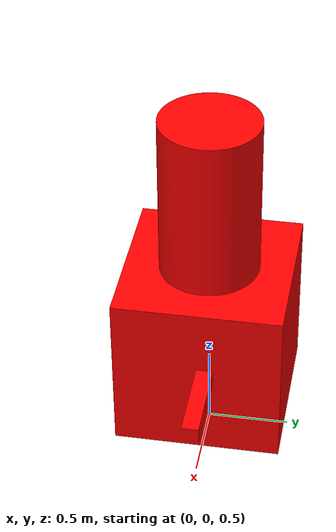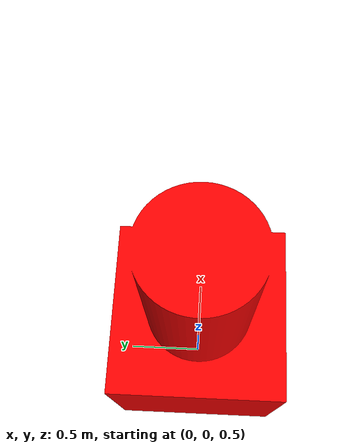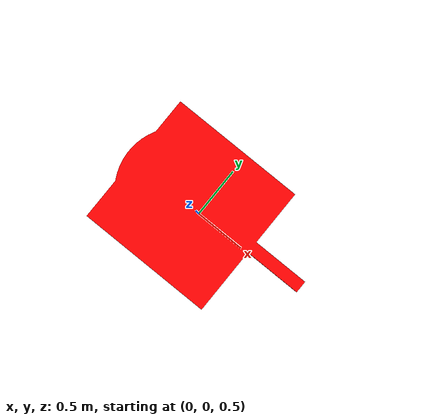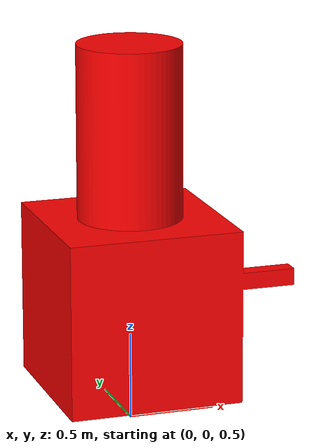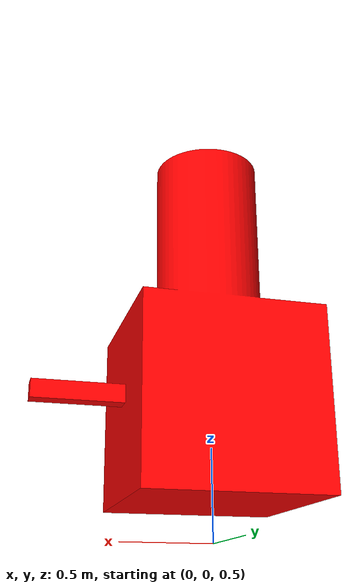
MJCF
<?xml version="1.0" ?>
<mujoco>
    <compiler angle="radian" />
    <option timestep="0.2" iterations="30">
        <flag gravity="disable" />
   </option>

    <asset>
        <texture type="skybox" builtin="none" file="space.png" rgb1="1 1 1" rgb2=".6 .8 1" />
        <texture name="texplane" type="2d" builtin="checker" rgb1=".2 .3 .4" rgb2=".1 0.15 0.2" width="512" height="512"/>
        <material name="MatGnd" reflectance="0.5" texture="texplane" texrepeat="1 1" texuniform="true"/>

        <mesh name="ISS_viz" file="meshes/ISS.stl"/>
        <mesh name="satellite_viz" file="meshes/satellite.stl" scale="0.01 0.01 0.01"/>
    </asset>

    <worldbody>
        <body name="robot" pos="0 0 1.2">
            <joint axis="1 0 0" damping="0.1" name="slide0" pos="0 0 0" type="slide"/>
            <joint axis="0 1 0" damping="0.1" name="slide1" pos="0 0 0" type="slide"/>
            <joint axis="0 0 1" damping="1" name="slide2" pos="0 0 0" type="slide"/>
            <geom mass="1.0" pos="0 0 0" rgba="1 0 0 1" mesh="satellite_viz"  />
			<camera euler="0 0 0" fovy="40" name="rgb" pos="0 0 2.5"></camera>
        </body>
    </worldbody>
    <actuator>
        <motor gear="2000.0" joint="slide0"/>
        <motor gear="2000.0" joint="slide1"/>
    </actuator>
</mujoco>
